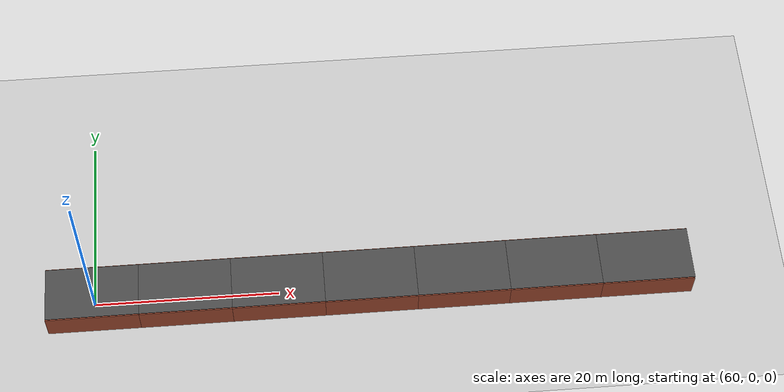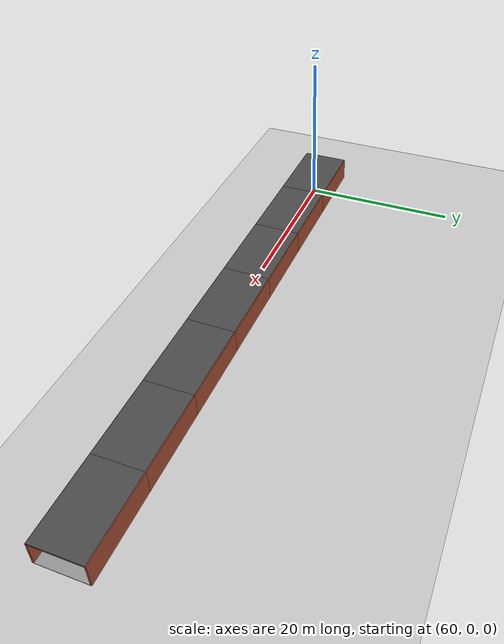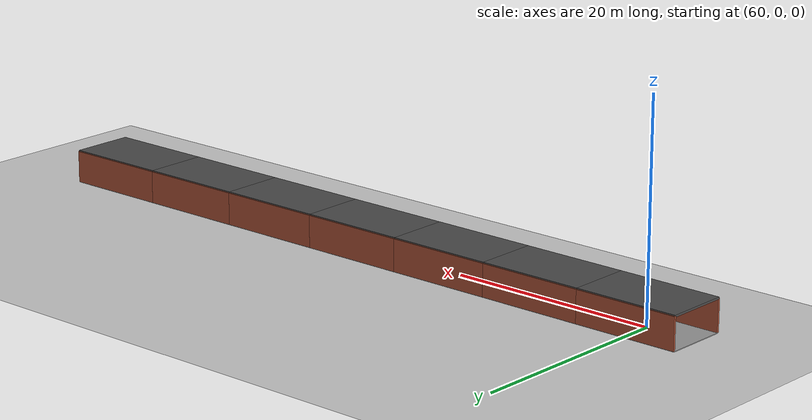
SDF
<sdf version="1.6">
 <world name="tunnel_innovation">
  <include><uri>model://ground_plane</uri></include>
  <model name="segment_6">
   <static>true</static>
   <pose>60 0 0 0 0 0</pose>
   <link name="link">
    <light name="lamp_6" type="point">
     <pose>0 0 2.5 0 0 0</pose>
     <diffuse>0.9 0.9 0.9 1</diffuse>
     <attenuation><range>15</range><constant>0.5</constant></attenuation>
    </light>
    <collision name="floor"><geometry><box><size>10 6 0.2</size></box></geometry></collision>
    <visual name="floor">
     <pose>0 0 -0.1 0 0 0</pose>
     <geometry><box><size>10 6 0.2</size></box></geometry>
     <material>
      <script><uri>file://media/materials/scripts/gazebo.material</uri><name>Gazebo/Grey</name></script>
     </material>
    </visual>
    <visual name="roof">
     <pose>0 0 3.0 0 0 0</pose>
     <geometry><box><size>10 6 0.2</size></box></geometry>
     <material>
      <script><uri>file://media/materials/scripts/gazebo.material</uri><name>Gazebo/DarkGrey</name></script>
     </material>
    </visual>
    <visual name="wall_l">
     <pose>0 3 1.5 0 0 0</pose>
     <geometry><box><size>10 0.2 3</size></box></geometry>
     <material>
      <script><uri>file://media/materials/scripts/gazebo.material</uri><name>Gazebo/Bricks</name></script>
     </material>
    </visual>
    <visual name="wall_r">
     <pose>0 -3 1.5 0 0 0</pose>
     <geometry><box><size>10 0.2 3</size></box></geometry>
     <material>
      <script><uri>file://media/materials/scripts/gazebo.material</uri><name>Gazebo/Bricks</name></script>
     </material>
    </visual>
    <visual name="pillar_l">
     <pose>0 2.8 1.5 0 0 0</pose>
     <geometry><cylinder><radius>0.2</radius><length>3</length></cylinder></geometry>
     <material>
      <script><uri>file://media/materials/scripts/gazebo.material</uri><name>Gazebo/Yellow</name></script>
     </material>
    </visual>
    <visual name="pillar_r">
     <pose>0 -2.8 1.5 0 0 0</pose>
     <geometry><cylinder><radius>0.2</radius><length>3</length></cylinder></geometry>
     <material>
      <script><uri>file://media/materials/scripts/gazebo.material</uri><name>Gazebo/Yellow</name></script>
     </material>
    </visual>
   </link>
  </model>
  <model name="segment_7">
   <static>true</static>
   <pose>70 0 0 0 0 0</pose>
   <link name="link">
    <light name="lamp_7" type="point">
     <pose>0 0 2.5 0 0 0</pose>
     <diffuse>0.9 0.9 0.9 1</diffuse>
     <attenuation><range>15</range><constant>0.5</constant></attenuation>
    </light>
    <collision name="floor"><geometry><box><size>10 6 0.2</size></box></geometry></collision>
    <visual name="floor">
     <pose>0 0 -0.1 0 0 0</pose>
     <geometry><box><size>10 6 0.2</size></box></geometry>
     <material>
      <script><uri>file://media/materials/scripts/gazebo.material</uri><name>Gazebo/Grey</name></script>
     </material>
    </visual>
    <visual name="roof">
     <pose>0 0 3.0 0 0 0</pose>
     <geometry><box><size>10 6 0.2</size></box></geometry>
     <material>
      <script><uri>file://media/materials/scripts/gazebo.material</uri><name>Gazebo/DarkGrey</name></script>
     </material>
    </visual>
    <visual name="wall_l">
     <pose>0 3 1.5 0 0 0</pose>
     <geometry><box><size>10 0.2 3</size></box></geometry>
     <material>
      <script><uri>file://media/materials/scripts/gazebo.material</uri><name>Gazebo/Bricks</name></script>
     </material>
    </visual>
    <visual name="wall_r">
     <pose>0 -3 1.5 0 0 0</pose>
     <geometry><box><size>10 0.2 3</size></box></geometry>
     <material>
      <script><uri>file://media/materials/scripts/gazebo.material</uri><name>Gazebo/Bricks</name></script>
     </material>
    </visual>
    <visual name="pillar_l">
     <pose>0 2.8 1.5 0 0 0</pose>
     <geometry><cylinder><radius>0.2</radius><length>3</length></cylinder></geometry>
     <material>
      <script><uri>file://media/materials/scripts/gazebo.material</uri><name>Gazebo/Yellow</name></script>
     </material>
    </visual>
    <visual name="pillar_r">
     <pose>0 -2.8 1.5 0 0 0</pose>
     <geometry><cylinder><radius>0.2</radius><length>3</length></cylinder></geometry>
     <material>
      <script><uri>file://media/materials/scripts/gazebo.material</uri><name>Gazebo/Red</name></script>
     </material>
    </visual>
   </link>
  </model>
  <model name="segment_8">
   <static>true</static>
   <pose>80 0 0 0 0 0</pose>
   <link name="link">
    <light name="lamp_8" type="point">
     <pose>0 0 2.5 0 0 0</pose>
     <diffuse>0.9 0.9 0.9 1</diffuse>
     <attenuation><range>15</range><constant>0.5</constant></attenuation>
    </light>
    <collision name="floor"><geometry><box><size>10 6 0.2</size></box></geometry></collision>
    <visual name="floor">
     <pose>0 0 -0.1 0 0 0</pose>
     <geometry><box><size>10 6 0.2</size></box></geometry>
     <material>
      <script><uri>file://media/materials/scripts/gazebo.material</uri><name>Gazebo/Grey</name></script>
     </material>
    </visual>
    <visual name="roof">
     <pose>0 0 3.0 0 0 0</pose>
     <geometry><box><size>10 6 0.2</size></box></geometry>
     <material>
      <script><uri>file://media/materials/scripts/gazebo.material</uri><name>Gazebo/DarkGrey</name></script>
     </material>
    </visual>
    <visual name="wall_l">
     <pose>0 3 1.5 0 0 0</pose>
     <geometry><box><size>10 0.2 3</size></box></geometry>
     <material>
      <script><uri>file://media/materials/scripts/gazebo.material</uri><name>Gazebo/Bricks</name></script>
     </material>
    </visual>
    <visual name="wall_r">
     <pose>0 -3 1.5 0 0 0</pose>
     <geometry><box><size>10 0.2 3</size></box></geometry>
     <material>
      <script><uri>file://media/materials/scripts/gazebo.material</uri><name>Gazebo/Bricks</name></script>
     </material>
    </visual>
    <visual name="pillar_l">
     <pose>0 2.8 1.5 0 0 0</pose>
     <geometry><cylinder><radius>0.2</radius><length>3</length></cylinder></geometry>
     <material>
      <script><uri>file://media/materials/scripts/gazebo.material</uri><name>Gazebo/Yellow</name></script>
     </material>
    </visual>
    <visual name="pillar_r">
     <pose>0 -2.8 1.5 0 0 0</pose>
     <geometry><cylinder><radius>0.2</radius><length>3</length></cylinder></geometry>
     <material>
      <script><uri>file://media/materials/scripts/gazebo.material</uri><name>Gazebo/Yellow</name></script>
     </material>
    </visual>
   </link>
  </model>
  <model name="segment_9">
   <static>true</static>
   <pose>90 0 0 0 0 0</pose>
   <link name="link">
    <light name="lamp_9" type="point">
     <pose>0 0 2.5 0 0 0</pose>
     <diffuse>0.9 0.9 0.9 1</diffuse>
     <attenuation><range>15</range><constant>0.5</constant></attenuation>
    </light>
    <collision name="floor"><geometry><box><size>10 6 0.2</size></box></geometry></collision>
    <visual name="floor">
     <pose>0 0 -0.1 0 0 0</pose>
     <geometry><box><size>10 6 0.2</size></box></geometry>
     <material>
      <script><uri>file://media/materials/scripts/gazebo.material</uri><name>Gazebo/Grey</name></script>
     </material>
    </visual>
    <visual name="roof">
     <pose>0 0 3.0 0 0 0</pose>
     <geometry><box><size>10 6 0.2</size></box></geometry>
     <material>
      <script><uri>file://media/materials/scripts/gazebo.material</uri><name>Gazebo/DarkGrey</name></script>
     </material>
    </visual>
    <visual name="wall_l">
     <pose>0 3 1.5 0 0 0</pose>
     <geometry><box><size>10 0.2 3</size></box></geometry>
     <material>
      <script><uri>file://media/materials/scripts/gazebo.material</uri><name>Gazebo/Bricks</name></script>
     </material>
    </visual>
    <visual name="wall_r">
     <pose>0 -3 1.5 0 0 0</pose>
     <geometry><box><size>10 0.2 3</size></box></geometry>
     <material>
      <script><uri>file://media/materials/scripts/gazebo.material</uri><name>Gazebo/Bricks</name></script>
     </material>
    </visual>
    <visual name="pillar_l">
     <pose>0 2.8 1.5 0 0 0</pose>
     <geometry><cylinder><radius>0.2</radius><length>3</length></cylinder></geometry>
     <material>
      <script><uri>file://media/materials/scripts/gazebo.material</uri><name>Gazebo/Yellow</name></script>
     </material>
    </visual>
    <visual name="pillar_r">
     <pose>0 -2.8 1.5 0 0 0</pose>
     <geometry><cylinder><radius>0.2</radius><length>3</length></cylinder></geometry>
     <material>
      <script><uri>file://media/materials/scripts/gazebo.material</uri><name>Gazebo/Red</name></script>
     </material>
    </visual>
   </link>
  </model>
  <model name="segment_10">
   <static>true</static>
   <pose>100 0 0 0 0 0</pose>
   <link name="link">
    <light name="lamp_10" type="point">
     <pose>0 0 2.5 0 0 0</pose>
     <diffuse>0.9 0.9 0.9 1</diffuse>
     <attenuation><range>15</range><constant>0.5</constant></attenuation>
    </light>
    <collision name="floor"><geometry><box><size>10 6 0.2</size></box></geometry></collision>
    <visual name="floor">
     <pose>0 0 -0.1 0 0 0</pose>
     <geometry><box><size>10 6 0.2</size></box></geometry>
     <material>
      <script><uri>file://media/materials/scripts/gazebo.material</uri><name>Gazebo/Grey</name></script>
     </material>
    </visual>
    <visual name="roof">
     <pose>0 0 3.0 0 0 0</pose>
     <geometry><box><size>10 6 0.2</size></box></geometry>
     <material>
      <script><uri>file://media/materials/scripts/gazebo.material</uri><name>Gazebo/DarkGrey</name></script>
     </material>
    </visual>
    <visual name="wall_l">
     <pose>0 3 1.5 0 0 0</pose>
     <geometry><box><size>10 0.2 3</size></box></geometry>
     <material>
      <script><uri>file://media/materials/scripts/gazebo.material</uri><name>Gazebo/Bricks</name></script>
     </material>
    </visual>
    <visual name="wall_r">
     <pose>0 -3 1.5 0 0 0</pose>
     <geometry><box><size>10 0.2 3</size></box></geometry>
     <material>
      <script><uri>file://media/materials/scripts/gazebo.material</uri><name>Gazebo/Bricks</name></script>
     </material>
    </visual>
    <visual name="pillar_l">
     <pose>0 2.8 1.5 0 0 0</pose>
     <geometry><cylinder><radius>0.2</radius><length>3</length></cylinder></geometry>
     <material>
      <script><uri>file://media/materials/scripts/gazebo.material</uri><name>Gazebo/Yellow</name></script>
     </material>
    </visual>
    <visual name="pillar_r">
     <pose>0 -2.8 1.5 0 0 0</pose>
     <geometry><cylinder><radius>0.2</radius><length>3</length></cylinder></geometry>
     <material>
      <script><uri>file://media/materials/scripts/gazebo.material</uri><name>Gazebo/Yellow</name></script>
     </material>
    </visual>
   </link>
  </model>
  <model name="segment_11">
   <static>true</static>
   <pose>110 0 0 0 0 0</pose>
   <link name="link">
    <light name="lamp_11" type="point">
     <pose>0 0 2.5 0 0 0</pose>
     <diffuse>0.9 0.9 0.9 1</diffuse>
     <attenuation><range>15</range><constant>0.5</constant></attenuation>
    </light>
    <collision name="floor"><geometry><box><size>10 6 0.2</size></box></geometry></collision>
    <visual name="floor">
     <pose>0 0 -0.1 0 0 0</pose>
     <geometry><box><size>10 6 0.2</size></box></geometry>
     <material>
      <script><uri>file://media/materials/scripts/gazebo.material</uri><name>Gazebo/Grey</name></script>
     </material>
    </visual>
    <visual name="roof">
     <pose>0 0 3.0 0 0 0</pose>
     <geometry><box><size>10 6 0.2</size></box></geometry>
     <material>
      <script><uri>file://media/materials/scripts/gazebo.material</uri><name>Gazebo/DarkGrey</name></script>
     </material>
    </visual>
    <visual name="wall_l">
     <pose>0 3 1.5 0 0 0</pose>
     <geometry><box><size>10 0.2 3</size></box></geometry>
     <material>
      <script><uri>file://media/materials/scripts/gazebo.material</uri><name>Gazebo/Bricks</name></script>
     </material>
    </visual>
    <visual name="wall_r">
     <pose>0 -3 1.5 0 0 0</pose>
     <geometry><box><size>10 0.2 3</size></box></geometry>
     <material>
      <script><uri>file://media/materials/scripts/gazebo.material</uri><name>Gazebo/Bricks</name></script>
     </material>
    </visual>
    <visual name="pillar_l">
     <pose>0 2.8 1.5 0 0 0</pose>
     <geometry><cylinder><radius>0.2</radius><length>3</length></cylinder></geometry>
     <material>
      <script><uri>file://media/materials/scripts/gazebo.material</uri><name>Gazebo/Yellow</name></script>
     </material>
    </visual>
    <visual name="pillar_r">
     <pose>0 -2.8 1.5 0 0 0</pose>
     <geometry><cylinder><radius>0.2</radius><length>3</length></cylinder></geometry>
     <material>
      <script><uri>file://media/materials/scripts/gazebo.material</uri><name>Gazebo/Red</name></script>
     </material>
    </visual>
   </link>
  </model>
  <model name="segment_12">
   <static>true</static>
   <pose>120 0 0 0 0 0</pose>
   <link name="link">
    <collision name="floor"><geometry><box><size>10 6 0.2</size></box></geometry></collision>
    <visual name="floor">
     <pose>0 0 -0.1 0 0 0</pose>
     <geometry><box><size>10 6 0.2</size></box></geometry>
     <material>
      <script><uri>file://media/materials/scripts/gazebo.material</uri><name>Gazebo/Grey</name></script>
     </material>
    </visual>
    <visual name="roof">
     <pose>0 0 3.0 0 0 0</pose>
     <geometry><box><size>10 6 0.2</size></box></geometry>
     <material>
      <script><uri>file://media/materials/scripts/gazebo.material</uri><name>Gazebo/DarkGrey</name></script>
     </material>
    </visual>
    <visual name="wall_l">
     <pose>0 3 1.5 0 0 0</pose>
     <geometry><box><size>10 0.2 3</size></box></geometry>
     <material>
      <script><uri>file://media/materials/scripts/gazebo.material</uri><name>Gazebo/Bricks</name></script>
     </material>
    </visual>
    <visual name="wall_r">
     <pose>0 -3 1.5 0 0 0</pose>
     <geometry><box><size>10 0.2 3</size></box></geometry>
     <material>
      <script><uri>file://media/materials/scripts/gazebo.material</uri><name>Gazebo/Bricks</name></script>
     </material>
    </visual>
    <visual name="pillar_l">
     <pose>0 2.8 1.5 0 0 0</pose>
     <geometry><cylinder><radius>0.2</radius><length>3</length></cylinder></geometry>
     <material>
      <script><uri>file://media/materials/scripts/gazebo.material</uri><name>Gazebo/Yellow</name></script>
     </material>
    </visual>
    <visual name="pillar_r">
     <pose>0 -2.8 1.5 0 0 0</pose>
     <geometry><cylinder><radius>0.2</radius><length>3</length></cylinder></geometry>
     <material>
      <script><uri>file://media/materials/scripts/gazebo.material</uri><name>Gazebo/Yellow</name></script>
     </material>
    </visual>
   </link>
  </model>
 </world>
</sdf>
